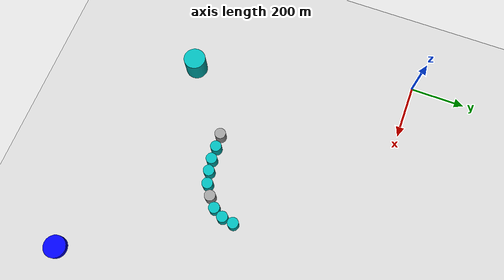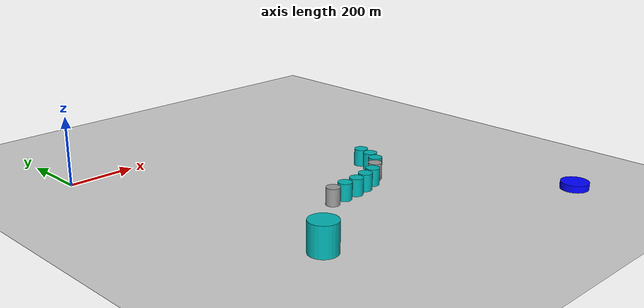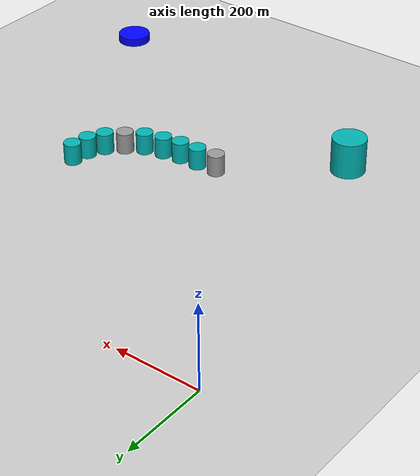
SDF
<sdf version="1.5">
 <world name="default">
  <physics type="ode">
   <ode>
    <solver><type>quick</type><iters>100</iters><sor>1.0</sor></solver>
    <constraints>
     <cfm>0.0</cfm>
     <erp>0.9</erp>
     <contact_max_correcting_vel>0.1</contact_max_correcting_vel>
     <contact_surface_layer>0.0</contact_surface_layer>
    </constraints>
   </ode>
   <real_time_update_rate>1000</real_time_update_rate>
   <max_step_size>0.0010</max_step_size>
  </physics>
  <scene>
   <sky><clouds><speed>12</speed></clouds></sky>
   <ambient>0.4 0.4 0.4 1</ambient>
   <background>0.25 0.25 0.25 1</background>
  </scene>
  <model name="ground_plane">
   <static>true</static>
   <link name="link">
    <collision name="collision">
     <geometry><plane><normal>0 0 1</normal><size>5000 5000</size></plane></geometry>
     <surface><friction><ode><mu>1</mu><mu2>1</mu2></ode></friction></surface>
    </collision>
    <visual name="runway">
     <pose>000 0 0.005 0 0 0</pose>
     <cast_shadows>false</cast_shadows>
     <geometry><plane><normal>0 0 1</normal><size>1829 45</size></plane></geometry>
     <material>
      <script><uri>file://media/materials/scripts/gazebo.material</uri><name>Gazebo/Runway</name></script>
     </material>
    </visual>
    <visual name="grass">
     <pose>0 0 -0.1 0 0 0</pose>
     <cast_shadows>false</cast_shadows>
     <geometry><plane><normal>0 0 1</normal><size>5000 5000</size></plane></geometry>
     <material>
      <script><uri>file://media/materials/scripts/gazebo.material</uri><name>Gazebo/Grass</name></script>
     </material>
    </visual>
   </link>
  </model>
  <include><uri>model://sun</uri></include>
  <model name="Obstacles">
   <static>true</static>
   <link name="Goal">
    <pose>1000 -1000 10 0 -0 0</pose>
    <collision name="collision">
     <geometry><cylinder><radius>40</radius><length>20</length></cylinder></geometry>
     <surface><friction><ode><mu>1</mu><mu2>1</mu2></ode></friction></surface>
    </collision>
    <visual name="visual">
     <geometry><cylinder><radius>40</radius><length>20</length></cylinder></geometry>
     <material>
      <lighting>1</lighting>
      <script><uri>file://media/materials/scripts/gazebo.material</uri><name>Gazebo/Grey</name></script>
      <shader type="pixel"><normal_map>__default__</normal_map></shader>
      <ambient>0.3 0.3 0.3 1</ambient>
      <diffuse>0 0.0 1.0 1</diffuse>
      <specular>0.01 0.01 0.01 1</specular>
      <emissive>0 0 0 1</emissive>
     </material>
    </visual>
   </link>
   <link name="Obs1">
    <pose>430 -610 25 0 -0 0</pose>
    <collision name="collision">
     <geometry><cylinder><radius>20</radius><length>50</length></cylinder></geometry>
     <surface><friction><ode><mu>1</mu><mu2>1</mu2></ode></friction></surface>
    </collision>
    <visual name="visual">
     <geometry><cylinder><radius>20</radius><length>50</length></cylinder></geometry>
     <material>
      <lighting>1</lighting>
      <script><uri>file://media/materials/scripts/gazebo.material</uri><name>Gazebo/Grey</name></script>
      <shader type="pixel"><normal_map>__default__</normal_map></shader>
      <ambient>0.3 0.3 0.3 1</ambient>
      <diffuse>0.7 0.7 0.7 1</diffuse>
      <specular>0.01 0.01 0.01 1</specular>
      <emissive>0 0 0 1</emissive>
     </material>
    </visual>
   </link>
   <link name="Obs2">
    <pose>480 -607 25 0 -0 0</pose>
    <collision name="collision">
     <geometry><cylinder><radius>20</radius><length>50</length></cylinder></geometry>
     <surface><friction><ode><mu>1</mu><mu2>1</mu2></ode></friction></surface>
    </collision>
    <visual name="visual">
     <geometry><cylinder><radius>20</radius><length>50</length></cylinder></geometry>
     <material>
      <lighting>1</lighting>
      <script><uri>file://media/materials/scripts/gazebo.material</uri><name>Gazebo/Grey</name></script>
      <shader type="pixel"><normal_map>__default__</normal_map></shader>
      <ambient>0.3 0.3 0.3 1</ambient>
      <diffuse>0 0.7 0.7 1</diffuse>
      <specular>0.01 0.01 0.01 1</specular>
      <emissive>0 0 0 1</emissive>
     </material>
    </visual>
   </link>
   <link name="Obs3">
    <pose>527.5 -605 25 0 -0 0</pose>
    <collision name="collision">
     <geometry><cylinder><radius>20</radius><length>50</length></cylinder></geometry>
     <surface><friction><ode><mu>1</mu><mu2>1</mu2></ode></friction></surface>
    </collision>
    <visual name="visual">
     <geometry><cylinder><radius>20</radius><length>50</length></cylinder></geometry>
     <material>
      <lighting>1</lighting>
      <script><uri>file://media/materials/scripts/gazebo.material</uri><name>Gazebo/Grey</name></script>
      <shader type="pixel"><normal_map>__default__</normal_map></shader>
      <ambient>0.3 0.3 0.3 1</ambient>
      <diffuse>0 0.7 0.7 1</diffuse>
      <specular>0.01 0.01 0.01 1</specular>
      <emissive>0 0 0 1</emissive>
     </material>
    </visual>
   </link>
   <link name="Obs4">
    <pose>572 -597.5 25 0 -0 0</pose>
    <collision name="collision">
     <geometry><cylinder><radius>20</radius><length>50</length></cylinder></geometry>
     <surface><friction><ode><mu>1</mu><mu2>1</mu2></ode></friction></surface>
    </collision>
    <visual name="visual">
     <geometry><cylinder><radius>20</radius><length>50</length></cylinder></geometry>
     <material>
      <lighting>1</lighting>
      <script><uri>file://media/materials/scripts/gazebo.material</uri><name>Gazebo/Grey</name></script>
      <shader type="pixel"><normal_map>__default__</normal_map></shader>
      <ambient>0.3 0.3 0.3 1</ambient>
      <diffuse>0 0.7 0.7 1</diffuse>
      <specular>0.01 0.01 0.01 1</specular>
      <emissive>0 0 0 1</emissive>
     </material>
    </visual>
   </link>
   <link name="Obs5">
    <pose>617 -585 25 0 -0 0</pose>
    <collision name="collision">
     <geometry><cylinder><radius>20</radius><length>50</length></cylinder></geometry>
     <surface><friction><ode><mu>1</mu><mu2>1</mu2></ode></friction></surface>
    </collision>
    <visual name="visual">
     <geometry><cylinder><radius>20</radius><length>50</length></cylinder></geometry>
     <material>
      <lighting>1</lighting>
      <script><uri>file://media/materials/scripts/gazebo.material</uri><name>Gazebo/Grey</name></script>
      <shader type="pixel"><normal_map>__default__</normal_map></shader>
      <ambient>0.3 0.3 0.3 1</ambient>
      <diffuse>0 0.7 0.7 1</diffuse>
      <specular>0.01 0.01 0.01 1</specular>
      <emissive>0 0 0 1</emissive>
     </material>
    </visual>
   </link>
   <link name="Obs6">
    <pose>655 -560 25 0 -0 0</pose>
    <collision name="collision">
     <geometry><cylinder><radius>20</radius><length>50</length></cylinder></geometry>
     <surface><friction><ode><mu>1</mu><mu2>1</mu2></ode></friction></surface>
    </collision>
    <visual name="visual">
     <geometry><cylinder><radius>20</radius><length>50</length></cylinder></geometry>
     <material>
      <lighting>1</lighting>
      <script><uri>file://media/materials/scripts/gazebo.material</uri><name>Gazebo/Grey</name></script>
      <shader type="pixel"><normal_map>__default__</normal_map></shader>
      <ambient>0.3 0.3 0.3 1</ambient>
      <diffuse>0.7 0.7 0.7 1</diffuse>
      <specular>0.01 0.01 0.01 1</specular>
      <emissive>0 0 0 1</emissive>
     </material>
    </visual>
   </link>
   <link name="Obs7">
    <pose>690 -530 25 0 -0 0</pose>
    <collision name="collision">
     <geometry><cylinder><radius>20</radius><length>50</length></cylinder></geometry>
     <surface><friction><ode><mu>1</mu><mu2>1</mu2></ode></friction></surface>
    </collision>
    <visual name="visual">
     <geometry><cylinder><radius>20</radius><length>50</length></cylinder></geometry>
     <material>
      <lighting>1</lighting>
      <script><uri>file://media/materials/scripts/gazebo.material</uri><name>Gazebo/Grey</name></script>
      <shader type="pixel"><normal_map>__default__</normal_map></shader>
      <ambient>0.3 0.3 0.3 1</ambient>
      <diffuse>0 0.7 0.7 1</diffuse>
      <specular>0.01 0.01 0.01 1</specular>
      <emissive>0 0 0 1</emissive>
     </material>
    </visual>
   </link>
   <link name="Obs8">
    <pose>710 -492.5 25 0 -0 0</pose>
    <collision name="collision">
     <geometry><cylinder><radius>20</radius><length>50</length></cylinder></geometry>
     <surface><friction><ode><mu>1</mu><mu2>1</mu2></ode></friction></surface>
    </collision>
    <visual name="visual">
     <geometry><cylinder><radius>20</radius><length>50</length></cylinder></geometry>
     <material>
      <lighting>1</lighting>
      <script><uri>file://media/materials/scripts/gazebo.material</uri><name>Gazebo/Grey</name></script>
      <shader type="pixel"><normal_map>__default__</normal_map></shader>
      <ambient>0.3 0.3 0.3 1</ambient>
      <diffuse>0 0.7 0.7 1</diffuse>
      <specular>0.01 0.01 0.01 1</specular>
      <emissive>0 0 0 1</emissive>
     </material>
    </visual>
   </link>
   <link name="Obs9">
    <pose>717.5 -450 25 0 -0 0</pose>
    <collision name="collision">
     <geometry><cylinder><radius>20</radius><length>50</length></cylinder></geometry>
     <surface><friction><ode><mu>1</mu><mu2>1</mu2></ode></friction></surface>
    </collision>
    <visual name="visual">
     <geometry><cylinder><radius>20</radius><length>50</length></cylinder></geometry>
     <material>
      <lighting>1</lighting>
      <script><uri>file://media/materials/scripts/gazebo.material</uri><name>Gazebo/Grey</name></script>
      <shader type="pixel"><normal_map>__default__</normal_map></shader>
      <ambient>0.3 0.3 0.3 1</ambient>
      <diffuse>0 0.7 0.7 1</diffuse>
      <specular>0.01 0.01 0.01 1</specular>
      <emissive>0 0 0 1</emissive>
     </material>
    </visual>
   </link>
   <link name="Obs10">
    <pose>200 -800 42.5 0 -0 0</pose>
    <collision name="collision">
     <geometry><cylinder><radius>40</radius><length>85</length></cylinder></geometry>
     <surface><friction><ode><mu>1</mu><mu2>1</mu2></ode></friction></surface>
    </collision>
    <visual name="visual">
     <geometry><cylinder><radius>40</radius><length>85</length></cylinder></geometry>
     <material>
      <lighting>1</lighting>
      <script><uri>file://media/materials/scripts/gazebo.material</uri><name>Gazebo/Grey</name></script>
      <shader type="pixel"><normal_map>__default__</normal_map></shader>
      <ambient>0.3 0.3 0.3 1</ambient>
      <diffuse>0 0.7 0.7 1</diffuse>
      <specular>0.01 0.01 0.01 1</specular>
      <emissive>0 0 0 1</emissive>
     </material>
    </visual>
   </link>
  </model>
 </world>
</sdf>
